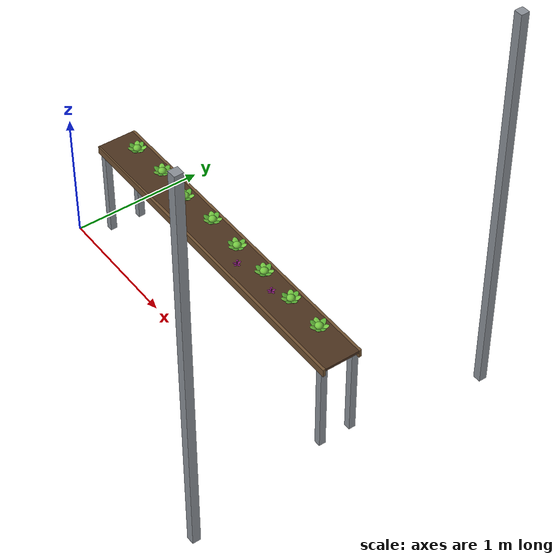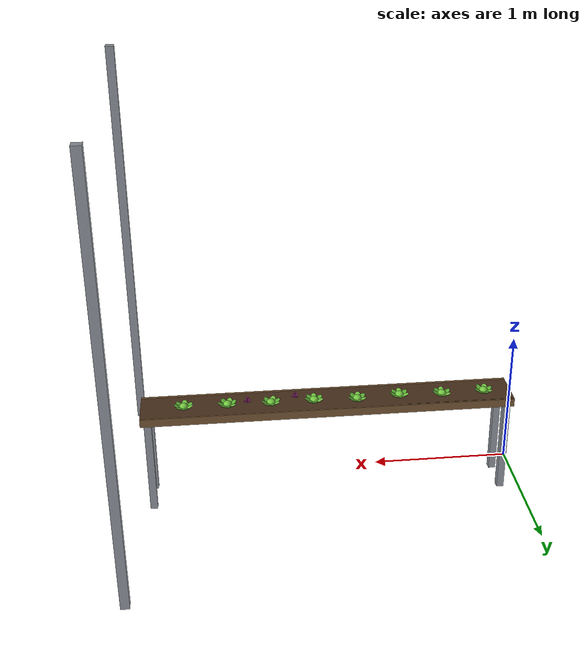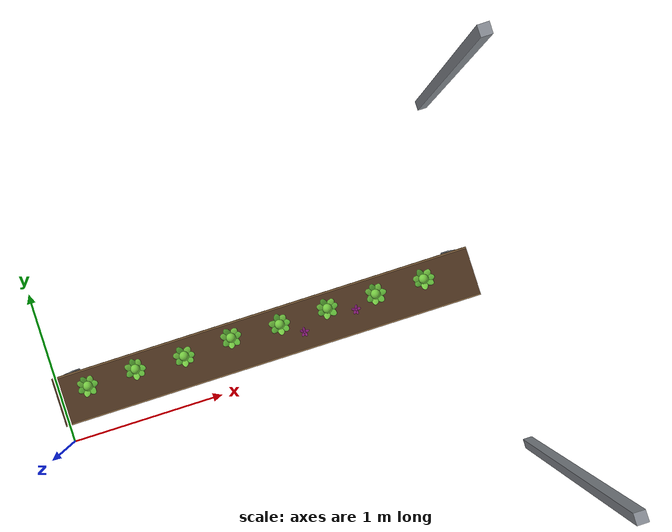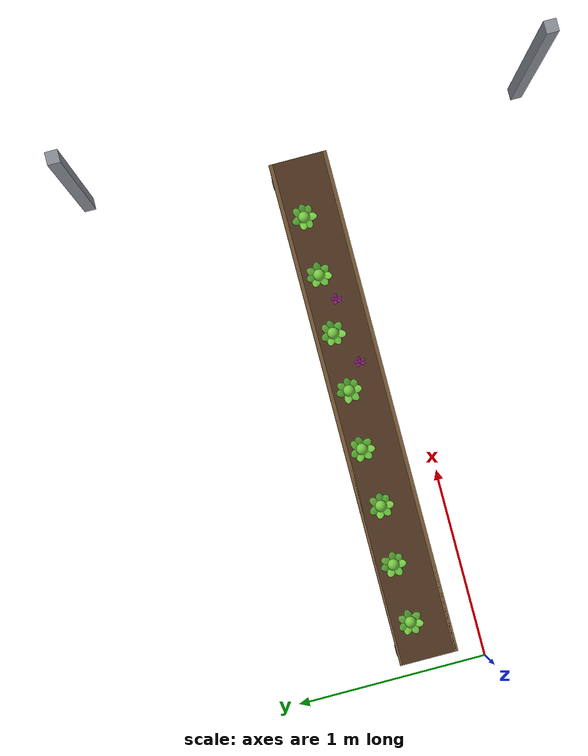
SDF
<sdf version="1.8">
 <world name="weeding_bed">
  <model name="post_2a">
   <static>true</static>
   <pose>2.8000 -0.9000 1.5000 0.0000 0.0000 0.0000</pose>
   <link name="link">
    <visual name="v">
     <geometry><box><size>0.0600 0.0600 3.0000</size></box></geometry>
     <material>
      <ambient>0.550 0.570 0.600 1</ambient>
      <diffuse>0.550 0.570 0.600 1</diffuse>
      <specular>0.1 0.1 0.1 1</specular>
     </material>
    </visual>
   </link>
  </model>
  <model name="post_2b">
   <static>true</static>
   <pose>2.8000 1.4000 1.5000 0.0000 0.0000 0.0000</pose>
   <link name="link">
    <visual name="v">
     <geometry><box><size>0.0600 0.0600 3.0000</size></box></geometry>
     <material>
      <ambient>0.550 0.570 0.600 1</ambient>
      <diffuse>0.550 0.570 0.600 1</diffuse>
      <specular>0.1 0.1 0.1 1</specular>
     </material>
    </visual>
   </link>
  </model>
  <model name="weed_6">
   <pose>1.6281 0.2580 0.7700 0.0000 0.0000 0.0000</pose>
   <link name="link">
    <inertial>
     <mass>0.008</mass>
     <inertia>
      <ixx>1.333e-06</ixx>
      <iyy>1.333e-06</iyy>
      <izz>5.333e-07</izz>
      <ixy>0</ixy>
      <ixz>0</ixz>
      <iyz>0</iyz>
     </inertia>
    </inertial>
    <visual name="stem">
     <pose>0.0000 0.0000 0.0175 0.0000 0.0000 0.0000</pose>
     <geometry><cylinder><radius>0.0030</radius><length>0.0350</length></cylinder></geometry>
     <material>
      <ambient>0.350 0.120 0.250 1</ambient>
      <diffuse>0.350 0.120 0.250 1</diffuse>
      <specular>0.1 0.1 0.1 1</specular>
     </material>
    </visual>
    <collision name="core_collision">
     <pose>0.0000 0.0000 0.0175 0.0000 0.0000 0.0000</pose>
     <geometry><cylinder><radius>0.0030</radius><length>0.0350</length></cylinder></geometry>
     <surface><friction><ode><mu>1.0</mu><mu2>1.0</mu2></ode></friction></surface>
    </collision>
    <visual name="leaf0">
     <pose>0.0139 0.0014 0.0060 0.0000 -0.3000 0.1000</pose>
     <geometry><ellipsoid><radii>0.0160 0.0080 0.0020</radii></ellipsoid></geometry>
     <material>
      <ambient>0.520 0.100 0.460 1</ambient>
      <diffuse>0.520 0.100 0.460 1</diffuse>
      <specular>0.1 0.1 0.1 1</specular>
     </material>
    </visual>
    <visual name="leaf1">
     <pose>0.0007 0.0140 0.0100 0.0000 -0.3000 1.5178</pose>
     <geometry><ellipsoid><radii>0.0160 0.0080 0.0020</radii></ellipsoid></geometry>
     <material>
      <ambient>0.520 0.100 0.460 1</ambient>
      <diffuse>0.520 0.100 0.460 1</diffuse>
      <specular>0.1 0.1 0.1 1</specular>
     </material>
    </visual>
    <visual name="leaf2">
     <pose>-0.0114 0.0081 0.0060 0.0000 -0.3000 2.5252</pose>
     <geometry><ellipsoid><radii>0.0160 0.0080 0.0020</radii></ellipsoid></geometry>
     <material>
      <ambient>0.520 0.100 0.460 1</ambient>
      <diffuse>0.520 0.100 0.460 1</diffuse>
      <specular>0.1 0.1 0.1 1</specular>
     </material>
    </visual>
    <visual name="leaf3">
     <pose>-0.0089 -0.0108 0.0100 0.0000 -0.3000 4.0222</pose>
     <geometry><ellipsoid><radii>0.0160 0.0080 0.0020</radii></ellipsoid></geometry>
     <material>
      <ambient>0.520 0.100 0.460 1</ambient>
      <diffuse>0.520 0.100 0.460 1</diffuse>
      <specular>0.1 0.1 0.1 1</specular>
     </material>
    </visual>
    <visual name="leaf4">
     <pose>0.0038 -0.0135 0.0060 0.0000 -0.3000 4.9909</pose>
     <geometry><ellipsoid><radii>0.0160 0.0080 0.0020</radii></ellipsoid></geometry>
     <material>
      <ambient>0.520 0.100 0.460 1</ambient>
      <diffuse>0.520 0.100 0.460 1</diffuse>
      <specular>0.1 0.1 0.1 1</specular>
     </material>
    </visual>
    <visual name="top">
     <pose>0.0000 0.0000 0.0360 0.0000 0.0000 0.0000</pose>
     <geometry><ellipsoid><radii>0.0080 0.0080 0.0040</radii></ellipsoid></geometry>
     <material>
      <ambient>0.520 0.100 0.460 1</ambient>
      <diffuse>0.520 0.100 0.460 1</diffuse>
      <specular>0.1 0.1 0.1 1</specular>
     </material>
    </visual>
   </link>
   <plugin filename="ignition-gazebo-detachable-joint-system" name="ignition::gazebo::systems::DetachableJoint">
    <parent_link>link</parent_link>
    <child_model>agrobot</child_model>
    <child_link>link_4</child_link>
    <attach_topic>/agrobot/sim/weed_6/attach_gripper</attach_topic>
    <detach_topic>/agrobot/sim/weed_6/detach_gripper</detach_topic>
    <suppress_child_warning>true</suppress_child_warning>
   </plugin>
  </model>
  <model name="weed_7">
   <pose>1.9622 0.2919 0.7700 0.0000 0.0000 0.0000</pose>
   <link name="link">
    <inertial>
     <mass>0.008</mass>
     <inertia>
      <ixx>1.333e-06</ixx>
      <iyy>1.333e-06</iyy>
      <izz>5.333e-07</izz>
      <ixy>0</ixy>
      <ixz>0</ixz>
      <iyz>0</iyz>
     </inertia>
    </inertial>
    <visual name="stem">
     <pose>0.0000 0.0000 0.0175 0.0000 0.0000 0.0000</pose>
     <geometry><cylinder><radius>0.0030</radius><length>0.0350</length></cylinder></geometry>
     <material>
      <ambient>0.350 0.120 0.250 1</ambient>
      <diffuse>0.350 0.120 0.250 1</diffuse>
      <specular>0.1 0.1 0.1 1</specular>
     </material>
    </visual>
    <collision name="core_collision">
     <pose>0.0000 0.0000 0.0175 0.0000 0.0000 0.0000</pose>
     <geometry><cylinder><radius>0.0030</radius><length>0.0350</length></cylinder></geometry>
     <surface><friction><ode><mu>1.0</mu><mu2>1.0</mu2></ode></friction></surface>
    </collision>
    <visual name="leaf0">
     <pose>0.0140 0.0006 0.0060 0.0000 -0.3000 0.0440</pose>
     <geometry><ellipsoid><radii>0.0160 0.0080 0.0020</radii></ellipsoid></geometry>
     <material>
      <ambient>0.520 0.100 0.460 1</ambient>
      <diffuse>0.520 0.100 0.460 1</diffuse>
      <specular>0.1 0.1 0.1 1</specular>
     </material>
    </visual>
    <visual name="leaf1">
     <pose>0.0034 0.0136 0.0100 0.0000 -0.3000 1.3290</pose>
     <geometry><ellipsoid><radii>0.0160 0.0080 0.0020</radii></ellipsoid></geometry>
     <material>
      <ambient>0.520 0.100 0.460 1</ambient>
      <diffuse>0.520 0.100 0.460 1</diffuse>
      <specular>0.1 0.1 0.1 1</specular>
     </material>
    </visual>
    <visual name="leaf2">
     <pose>-0.0128 0.0058 0.0060 0.0000 -0.3000 2.7171</pose>
     <geometry><ellipsoid><radii>0.0160 0.0080 0.0020</radii></ellipsoid></geometry>
     <material>
      <ambient>0.520 0.100 0.460 1</ambient>
      <diffuse>0.520 0.100 0.460 1</diffuse>
      <specular>0.1 0.1 0.1 1</specular>
     </material>
    </visual>
    <visual name="leaf3">
     <pose>-0.0091 -0.0107 0.0100 0.0000 -0.3000 4.0085</pose>
     <geometry><ellipsoid><radii>0.0160 0.0080 0.0020</radii></ellipsoid></geometry>
     <material>
      <ambient>0.520 0.100 0.460 1</ambient>
      <diffuse>0.520 0.100 0.460 1</diffuse>
      <specular>0.1 0.1 0.1 1</specular>
     </material>
    </visual>
    <visual name="leaf4">
     <pose>0.0012 -0.0140 0.0060 0.0000 -0.3000 4.7958</pose>
     <geometry><ellipsoid><radii>0.0160 0.0080 0.0020</radii></ellipsoid></geometry>
     <material>
      <ambient>0.520 0.100 0.460 1</ambient>
      <diffuse>0.520 0.100 0.460 1</diffuse>
      <specular>0.1 0.1 0.1 1</specular>
     </material>
    </visual>
    <visual name="top">
     <pose>0.0000 0.0000 0.0360 0.0000 0.0000 0.0000</pose>
     <geometry><ellipsoid><radii>0.0080 0.0080 0.0040</radii></ellipsoid></geometry>
     <material>
      <ambient>0.520 0.100 0.460 1</ambient>
      <diffuse>0.520 0.100 0.460 1</diffuse>
      <specular>0.1 0.1 0.1 1</specular>
     </material>
    </visual>
   </link>
   <plugin filename="ignition-gazebo-detachable-joint-system" name="ignition::gazebo::systems::DetachableJoint">
    <parent_link>link</parent_link>
    <child_model>agrobot</child_model>
    <child_link>link_4</child_link>
    <attach_topic>/agrobot/sim/weed_7/attach_gripper</attach_topic>
    <detach_topic>/agrobot/sim/weed_7/detach_gripper</detach_topic>
    <suppress_child_warning>true</suppress_child_warning>
   </plugin>
  </model>
  <model name="raised_bed">
   <static>true</static>
   <pose>1.4000 0.3000 0.7600 0.0000 0.0000 0.0000</pose>
   <link name="bed">
    <inertial>
     <mass>80.0</mass>
     <inertia>
      <ixx>1.123e+00</ixx>
      <iyy>4.567e+01</iyy>
      <izz>4.559e+01</izz>
      <ixy>0</ixy>
      <ixz>0</ixz>
      <iyz>0</iyz>
     </inertia>
    </inertial>
    <visual name="soil">
     <geometry><box><size>2.6000 0.2800 0.0200</size></box></geometry>
     <material>
      <ambient>0.300 0.200 0.120 1</ambient>
      <diffuse>0.300 0.200 0.120 1</diffuse>
      <specular>0.1 0.1 0.1 1</specular>
     </material>
    </visual>
    <collision name="soil_collision">
     <geometry><box><size>2.6000 0.2800 0.0200</size></box></geometry>
     <surface><friction><ode><mu>1.0</mu><mu2>1.0</mu2></ode></friction></surface>
    </collision>
    <visual name="frame_front">
     <pose>0.0000 -0.1400 -0.0200 0.0000 0.0000 0.0000</pose>
     <geometry><box><size>2.6000 0.0200 0.0600</size></box></geometry>
     <material>
      <ambient>0.450 0.330 0.200 1</ambient>
      <diffuse>0.450 0.330 0.200 1</diffuse>
      <specular>0.1 0.1 0.1 1</specular>
     </material>
    </visual>
    <visual name="frame_back">
     <pose>0.0000 0.1400 -0.0200 0.0000 0.0000 0.0000</pose>
     <geometry><box><size>2.6000 0.0200 0.0600</size></box></geometry>
     <material>
      <ambient>0.450 0.330 0.200 1</ambient>
      <diffuse>0.450 0.330 0.200 1</diffuse>
      <specular>0.1 0.1 0.1 1</specular>
     </material>
    </visual>
    <visual name="leg_0">
     <pose>-1.2500 -0.1200 -0.3700 0.0000 0.0000 0.0000</pose>
     <geometry><box><size>0.0500 0.0500 0.7200</size></box></geometry>
     <material>
      <ambient>0.550 0.570 0.600 1</ambient>
      <diffuse>0.550 0.570 0.600 1</diffuse>
      <specular>0.1 0.1 0.1 1</specular>
     </material>
    </visual>
    <visual name="leg_1">
     <pose>1.2500 -0.1200 -0.3700 0.0000 0.0000 0.0000</pose>
     <geometry><box><size>0.0500 0.0500 0.7200</size></box></geometry>
     <material>
      <ambient>0.550 0.570 0.600 1</ambient>
      <diffuse>0.550 0.570 0.600 1</diffuse>
      <specular>0.1 0.1 0.1 1</specular>
     </material>
    </visual>
    <visual name="leg_2">
     <pose>-1.2500 0.1200 -0.3700 0.0000 0.0000 0.0000</pose>
     <geometry><box><size>0.0500 0.0500 0.7200</size></box></geometry>
     <material>
      <ambient>0.550 0.570 0.600 1</ambient>
      <diffuse>0.550 0.570 0.600 1</diffuse>
      <specular>0.1 0.1 0.1 1</specular>
     </material>
    </visual>
    <visual name="leg_3">
     <pose>1.2500 0.1200 -0.3700 0.0000 0.0000 0.0000</pose>
     <geometry><box><size>0.0500 0.0500 0.7200</size></box></geometry>
     <material>
      <ambient>0.550 0.570 0.600 1</ambient>
      <diffuse>0.550 0.570 0.600 1</diffuse>
      <specular>0.1 0.1 0.1 1</specular>
     </material>
    </visual>
    <visual name="lettuce_0_heart">
     <pose>-1.1000 0.0452 0.0350 0.0000 0.0000 0.0000</pose>
     <geometry><ellipsoid><radii>0.0300 0.0300 0.0250</radii></ellipsoid></geometry>
     <material>
      <ambient>0.450 0.780 0.250 1</ambient>
      <diffuse>0.450 0.780 0.250 1</diffuse>
      <specular>0.1 0.1 0.1 1</specular>
     </material>
    </visual>
    <visual name="lettuce_0_leaf0">
     <pose>-1.0701 0.0474 0.0300 0.0000 -0.5000 0.0741</pose>
     <geometry><ellipsoid><radii>0.0400 0.0220 0.0060</radii></ellipsoid></geometry>
     <material>
      <ambient>0.350 0.680 0.200 1</ambient>
      <diffuse>0.350 0.680 0.200 1</diffuse>
      <specular>0.1 0.1 0.1 1</specular>
     </material>
    </visual>
    <visual name="lettuce_0_leaf1">
     <pose>-1.0831 0.0699 0.0300 0.0000 -0.5000 0.9712</pose>
     <geometry><ellipsoid><radii>0.0400 0.0220 0.0060</radii></ellipsoid></geometry>
     <material>
      <ambient>0.450 0.780 0.250 1</ambient>
      <diffuse>0.450 0.780 0.250 1</diffuse>
      <specular>0.1 0.1 0.1 1</specular>
     </material>
    </visual>
    <visual name="lettuce_0_leaf2">
     <pose>-1.1107 0.0732 0.0300 0.0000 -0.5000 1.9349</pose>
     <geometry><ellipsoid><radii>0.0400 0.0220 0.0060</radii></ellipsoid></geometry>
     <material>
      <ambient>0.350 0.680 0.200 1</ambient>
      <diffuse>0.350 0.680 0.200 1</diffuse>
      <specular>0.1 0.1 0.1 1</specular>
     </material>
    </visual>
    <visual name="lettuce_0_leaf3">
     <pose>-1.1252 0.0615 0.0300 0.0000 -0.5000 2.5671</pose>
     <geometry><ellipsoid><radii>0.0400 0.0220 0.0060</radii></ellipsoid></geometry>
     <material>
      <ambient>0.450 0.780 0.250 1</ambient>
      <diffuse>0.450 0.780 0.250 1</diffuse>
      <specular>0.1 0.1 0.1 1</specular>
     </material>
    </visual>
    <visual name="lettuce_0_leaf4">
     <pose>-1.1283 0.0351 0.0300 0.0000 -0.5000 3.4826</pose>
     <geometry><ellipsoid><radii>0.0400 0.0220 0.0060</radii></ellipsoid></geometry>
     <material>
      <ambient>0.350 0.680 0.200 1</ambient>
      <diffuse>0.350 0.680 0.200 1</diffuse>
      <specular>0.1 0.1 0.1 1</specular>
     </material>
    </visual>
    <visual name="lettuce_0_leaf5">
     <pose>-1.1107 0.0172 0.0300 0.0000 -0.5000 4.3469</pose>
     <geometry><ellipsoid><radii>0.0400 0.0220 0.0060</radii></ellipsoid></geometry>
     <material>
      <ambient>0.450 0.780 0.250 1</ambient>
      <diffuse>0.450 0.780 0.250 1</diffuse>
      <specular>0.1 0.1 0.1 1</specular>
     </material>
    </visual>
    <visual name="lettuce_0_leaf6">
     <pose>-1.0840 0.0198 0.0300 0.0000 -0.5000 5.2757</pose>
     <geometry><ellipsoid><radii>0.0400 0.0220 0.0060</radii></ellipsoid></geometry>
     <material>
      <ambient>0.350 0.680 0.200 1</ambient>
      <diffuse>0.350 0.680 0.200 1</diffuse>
      <specular>0.1 0.1 0.1 1</specular>
     </material>
    </visual>
    <visual name="lettuce_1_heart">
     <pose>-0.8000 0.0547 0.0350 0.0000 0.0000 0.0000</pose>
     <geometry><ellipsoid><radii>0.0300 0.0300 0.0250</radii></ellipsoid></geometry>
     <material>
      <ambient>0.450 0.780 0.250 1</ambient>
      <diffuse>0.450 0.780 0.250 1</diffuse>
      <specular>0.1 0.1 0.1 1</specular>
     </material>
    </visual>
    <visual name="lettuce_1_leaf0">
     <pose>-0.7703 0.0503 0.0300 0.0000 -0.5000 -0.1479</pose>
     <geometry><ellipsoid><radii>0.0400 0.0220 0.0060</radii></ellipsoid></geometry>
     <material>
      <ambient>0.350 0.680 0.200 1</ambient>
      <diffuse>0.350 0.680 0.200 1</diffuse>
      <specular>0.1 0.1 0.1 1</specular>
     </material>
    </visual>
    <visual name="lettuce_1_leaf1">
     <pose>-0.7816 0.0784 0.0300 0.0000 -0.5000 0.9101</pose>
     <geometry><ellipsoid><radii>0.0400 0.0220 0.0060</radii></ellipsoid></geometry>
     <material>
      <ambient>0.450 0.780 0.250 1</ambient>
      <diffuse>0.450 0.780 0.250 1</diffuse>
      <specular>0.1 0.1 0.1 1</specular>
     </material>
    </visual>
    <visual name="lettuce_1_leaf2">
     <pose>-0.8033 0.0845 0.0300 0.0000 -0.5000 1.6808</pose>
     <geometry><ellipsoid><radii>0.0400 0.0220 0.0060</radii></ellipsoid></geometry>
     <material>
      <ambient>0.350 0.680 0.200 1</ambient>
      <diffuse>0.350 0.680 0.200 1</diffuse>
      <specular>0.1 0.1 0.1 1</specular>
     </material>
    </visual>
    <visual name="lettuce_1_leaf3">
     <pose>-0.8259 0.0699 0.0300 0.0000 -0.5000 2.6107</pose>
     <geometry><ellipsoid><radii>0.0400 0.0220 0.0060</radii></ellipsoid></geometry>
     <material>
      <ambient>0.450 0.780 0.250 1</ambient>
      <diffuse>0.450 0.780 0.250 1</diffuse>
      <specular>0.1 0.1 0.1 1</specular>
     </material>
    </visual>
    <visual name="lettuce_1_leaf4">
     <pose>-0.8274 0.0424 0.0300 0.0000 -0.5000 3.5630</pose>
     <geometry><ellipsoid><radii>0.0400 0.0220 0.0060</radii></ellipsoid></geometry>
     <material>
      <ambient>0.350 0.680 0.200 1</ambient>
      <diffuse>0.350 0.680 0.200 1</diffuse>
      <specular>0.1 0.1 0.1 1</specular>
     </material>
    </visual>
    <visual name="lettuce_1_leaf5">
     <pose>-0.8027 0.0248 0.0300 0.0000 -0.5000 4.6231</pose>
     <geometry><ellipsoid><radii>0.0400 0.0220 0.0060</radii></ellipsoid></geometry>
     <material>
      <ambient>0.450 0.780 0.250 1</ambient>
      <diffuse>0.450 0.780 0.250 1</diffuse>
      <specular>0.1 0.1 0.1 1</specular>
     </material>
    </visual>
    <visual name="lettuce_1_leaf6">
     <pose>-0.7803 0.0321 0.0300 0.0000 -0.5000 5.4289</pose>
     <geometry><ellipsoid><radii>0.0400 0.0220 0.0060</radii></ellipsoid></geometry>
     <material>
      <ambient>0.350 0.680 0.200 1</ambient>
      <diffuse>0.350 0.680 0.200 1</diffuse>
      <specular>0.1 0.1 0.1 1</specular>
     </material>
    </visual>
    <visual name="lettuce_2_heart">
     <pose>-0.5000 0.0403 0.0350 0.0000 0.0000 0.0000</pose>
     <geometry><ellipsoid><radii>0.0300 0.0300 0.0250</radii></ellipsoid></geometry>
     <material>
      <ambient>0.450 0.780 0.250 1</ambient>
      <diffuse>0.450 0.780 0.250 1</diffuse>
      <specular>0.1 0.1 0.1 1</specular>
     </material>
    </visual>
    <visual name="lettuce_2_leaf0">
     <pose>-0.4701 0.0376 0.0300 0.0000 -0.5000 -0.0897</pose>
     <geometry><ellipsoid><radii>0.0400 0.0220 0.0060</radii></ellipsoid></geometry>
     <material>
      <ambient>0.350 0.680 0.200 1</ambient>
      <diffuse>0.350 0.680 0.200 1</diffuse>
      <specular>0.1 0.1 0.1 1</specular>
     </material>
    </visual>
    <visual name="lettuce_2_leaf1">
     <pose>-0.4782 0.0609 0.0300 0.0000 -0.5000 0.7563</pose>
     <geometry><ellipsoid><radii>0.0400 0.0220 0.0060</radii></ellipsoid></geometry>
     <material>
      <ambient>0.450 0.780 0.250 1</ambient>
      <diffuse>0.450 0.780 0.250 1</diffuse>
      <specular>0.1 0.1 0.1 1</specular>
     </material>
    </visual>
    <visual name="lettuce_2_leaf2">
     <pose>-0.5109 0.0682 0.0300 0.0000 -0.5000 1.9437</pose>
     <geometry><ellipsoid><radii>0.0400 0.0220 0.0060</radii></ellipsoid></geometry>
     <material>
      <ambient>0.350 0.680 0.200 1</ambient>
      <diffuse>0.350 0.680 0.200 1</diffuse>
      <specular>0.1 0.1 0.1 1</specular>
     </material>
    </visual>
    <visual name="lettuce_2_leaf3">
     <pose>-0.5284 0.0499 0.0300 0.0000 -0.5000 2.8167</pose>
     <geometry><ellipsoid><radii>0.0400 0.0220 0.0060</radii></ellipsoid></geometry>
     <material>
      <ambient>0.450 0.780 0.250 1</ambient>
      <diffuse>0.450 0.780 0.250 1</diffuse>
      <specular>0.1 0.1 0.1 1</specular>
     </material>
    </visual>
    <visual name="lettuce_2_leaf4">
     <pose>-0.5252 0.0241 0.0300 0.0000 -0.5000 3.7128</pose>
     <geometry><ellipsoid><radii>0.0400 0.0220 0.0060</radii></ellipsoid></geometry>
     <material>
      <ambient>0.350 0.680 0.200 1</ambient>
      <diffuse>0.350 0.680 0.200 1</diffuse>
      <specular>0.1 0.1 0.1 1</specular>
     </material>
    </visual>
    <visual name="lettuce_2_leaf5">
     <pose>-0.5028 0.0104 0.0300 0.0000 -0.5000 4.6185</pose>
     <geometry><ellipsoid><radii>0.0400 0.0220 0.0060</radii></ellipsoid></geometry>
     <material>
      <ambient>0.450 0.780 0.250 1</ambient>
      <diffuse>0.450 0.780 0.250 1</diffuse>
      <specular>0.1 0.1 0.1 1</specular>
     </material>
    </visual>
    <visual name="lettuce_2_leaf6">
     <pose>-0.4791 0.0188 0.0300 0.0000 -0.5000 5.4835</pose>
     <geometry><ellipsoid><radii>0.0400 0.0220 0.0060</radii></ellipsoid></geometry>
     <material>
      <ambient>0.350 0.680 0.200 1</ambient>
      <diffuse>0.350 0.680 0.200 1</diffuse>
      <specular>0.1 0.1 0.1 1</specular>
     </material>
    </visual>
    <visual name="lettuce_3_heart">
     <pose>-0.2000 0.0590 0.0350 0.0000 0.0000 0.0000</pose>
     <geometry><ellipsoid><radii>0.0300 0.0300 0.0250</radii></ellipsoid></geometry>
     <material>
      <ambient>0.450 0.780 0.250 1</ambient>
      <diffuse>0.450 0.780 0.250 1</diffuse>
      <specular>0.1 0.1 0.1 1</specular>
     </material>
    </visual>
    <visual name="lettuce_3_leaf0">
     <pose>-0.1702 0.0625 0.0300 0.0000 -0.5000 0.1175</pose>
     <geometry><ellipsoid><radii>0.0400 0.0220 0.0060</radii></ellipsoid></geometry>
     <material>
      <ambient>0.350 0.680 0.200 1</ambient>
      <diffuse>0.350 0.680 0.200 1</diffuse>
      <specular>0.1 0.1 0.1 1</specular>
     </material>
    </visual>
    <visual name="lettuce_3_leaf1">
     <pose>-0.1791 0.0805 0.0300 0.0000 -0.5000 0.8003</pose>
     <geometry><ellipsoid><radii>0.0400 0.0220 0.0060</radii></ellipsoid></geometry>
     <material>
      <ambient>0.450 0.780 0.250 1</ambient>
      <diffuse>0.450 0.780 0.250 1</diffuse>
      <specular>0.1 0.1 0.1 1</specular>
     </material>
    </visual>
    <visual name="lettuce_3_leaf2">
     <pose>-0.2107 0.0870 0.0300 0.0000 -0.5000 1.9352</pose>
     <geometry><ellipsoid><radii>0.0400 0.0220 0.0060</radii></ellipsoid></geometry>
     <material>
      <ambient>0.350 0.680 0.200 1</ambient>
      <diffuse>0.350 0.680 0.200 1</diffuse>
      <specular>0.1 0.1 0.1 1</specular>
     </material>
    </visual>
    <visual name="lettuce_3_leaf3">
     <pose>-0.2270 0.0721 0.0300 0.0000 -0.5000 2.6875</pose>
     <geometry><ellipsoid><radii>0.0400 0.0220 0.0060</radii></ellipsoid></geometry>
     <material>
      <ambient>0.450 0.780 0.250 1</ambient>
      <diffuse>0.450 0.780 0.250 1</diffuse>
      <specular>0.1 0.1 0.1 1</specular>
     </material>
    </visual>
    <visual name="lettuce_3_leaf4">
     <pose>-0.2256 0.0433 0.0300 0.0000 -0.5000 3.6924</pose>
     <geometry><ellipsoid><radii>0.0400 0.0220 0.0060</radii></ellipsoid></geometry>
     <material>
      <ambient>0.350 0.680 0.200 1</ambient>
      <diffuse>0.350 0.680 0.200 1</diffuse>
      <specular>0.1 0.1 0.1 1</specular>
     </material>
    </visual>
    <visual name="lettuce_3_leaf5">
     <pose>-0.2059 0.0296 0.0300 0.0000 -0.5000 4.5136</pose>
     <geometry><ellipsoid><radii>0.0400 0.0220 0.0060</radii></ellipsoid></geometry>
     <material>
      <ambient>0.450 0.780 0.250 1</ambient>
      <diffuse>0.450 0.780 0.250 1</diffuse>
      <specular>0.1 0.1 0.1 1</specular>
     </material>
    </visual>
    <visual name="lettuce_3_leaf6">
     <pose>-0.1820 0.0350 0.0300 0.0000 -0.5000 5.3574</pose>
     <geometry><ellipsoid><radii>0.0400 0.0220 0.0060</radii></ellipsoid></geometry>
     <material>
      <ambient>0.350 0.680 0.200 1</ambient>
      <diffuse>0.350 0.680 0.200 1</diffuse>
      <specular>0.1 0.1 0.1 1</specular>
     </material>
    </visual>
    <visual name="lettuce_4_heart">
     <pose>0.1000 0.0473 0.0350 0.0000 0.0000 0.0000</pose>
     <geometry><ellipsoid><radii>0.0300 0.0300 0.0250</radii></ellipsoid></geometry>
     <material>
      <ambient>0.450 0.780 0.250 1</ambient>
      <diffuse>0.450 0.780 0.250 1</diffuse>
      <specular>0.1 0.1 0.1 1</specular>
     </material>
    </visual>
    <visual name="lettuce_4_leaf0">
     <pose>0.1300 0.0464 0.0300 0.0000 -0.5000 -0.0281</pose>
     <geometry><ellipsoid><radii>0.0400 0.0220 0.0060</radii></ellipsoid></geometry>
     <material>
      <ambient>0.350 0.680 0.200 1</ambient>
      <diffuse>0.350 0.680 0.200 1</diffuse>
      <specular>0.1 0.1 0.1 1</specular>
     </material>
    </visual>
    <visual name="lettuce_4_leaf1">
     <pose>0.1204 0.0693 0.0300 0.0000 -0.5000 0.8231</pose>
     <geometry><ellipsoid><radii>0.0400 0.0220 0.0060</radii></ellipsoid></geometry>
     <material>
      <ambient>0.450 0.780 0.250 1</ambient>
      <diffuse>0.450 0.780 0.250 1</diffuse>
      <specular>0.1 0.1 0.1 1</specular>
     </material>
    </visual>
    <visual name="lettuce_4_leaf2">
     <pose>0.0979 0.0772 0.0300 0.0000 -0.5000 1.6421</pose>
     <geometry><ellipsoid><radii>0.0400 0.0220 0.0060</radii></ellipsoid></geometry>
     <material>
      <ambient>0.350 0.680 0.200 1</ambient>
      <diffuse>0.350 0.680 0.200 1</diffuse>
      <specular>0.1 0.1 0.1 1</specular>
     </material>
    </visual>
    <visual name="lettuce_4_leaf3">
     <pose>0.0715 0.0567 0.0300 0.0000 -0.5000 2.8207</pose>
     <geometry><ellipsoid><radii>0.0400 0.0220 0.0060</radii></ellipsoid></geometry>
     <material>
      <ambient>0.450 0.780 0.250 1</ambient>
      <diffuse>0.450 0.780 0.250 1</diffuse>
      <specular>0.1 0.1 0.1 1</specular>
     </material>
    </visual>
    <visual name="lettuce_4_leaf4">
     <pose>0.0747 0.0311 0.0300 0.0000 -0.5000 3.7097</pose>
     <geometry><ellipsoid><radii>0.0400 0.0220 0.0060</radii></ellipsoid></geometry>
     <material>
      <ambient>0.350 0.680 0.200 1</ambient>
      <diffuse>0.350 0.680 0.200 1</diffuse>
      <specular>0.1 0.1 0.1 1</specular>
     </material>
    </visual>
    <visual name="lettuce_4_leaf5">
     <pose>0.0991 0.0173 0.0300 0.0000 -0.5000 4.6823</pose>
     <geometry><ellipsoid><radii>0.0400 0.0220 0.0060</radii></ellipsoid></geometry>
     <material>
      <ambient>0.450 0.780 0.250 1</ambient>
      <diffuse>0.450 0.780 0.250 1</diffuse>
      <specular>0.1 0.1 0.1 1</specular>
     </material>
    </visual>
    <visual name="lettuce_4_leaf6">
     <pose>0.1204 0.0253 0.0300 0.0000 -0.5000 5.4620</pose>
     <geometry><ellipsoid><radii>0.0400 0.0220 0.0060</radii></ellipsoid></geometry>
     <material>
      <ambient>0.350 0.680 0.200 1</ambient>
      <diffuse>0.350 0.680 0.200 1</diffuse>
      <specular>0.1 0.1 0.1 1</specular>
     </material>
    </visual>
    <visual name="lettuce_5_heart">
     <pose>0.4000 0.0511 0.0350 0.0000 0.0000 0.0000</pose>
     <geometry><ellipsoid><radii>0.0300 0.0300 0.0250</radii></ellipsoid></geometry>
     <material>
      <ambient>0.450 0.780 0.250 1</ambient>
      <diffuse>0.450 0.780 0.250 1</diffuse>
      <specular>0.1 0.1 0.1 1</specular>
     </material>
    </visual>
    <visual name="lettuce_5_leaf0">
     <pose>0.4299 0.0541 0.0300 0.0000 -0.5000 0.0994</pose>
     <geometry><ellipsoid><radii>0.0400 0.0220 0.0060</radii></ellipsoid></geometry>
     <material>
      <ambient>0.350 0.680 0.200 1</ambient>
      <diffuse>0.350 0.680 0.200 1</diffuse>
      <specular>0.1 0.1 0.1 1</specular>
     </material>
    </visual>
    <visual name="lettuce_5_leaf1">
     <pose>0.4219 0.0716 0.0300 0.0000 -0.5000 0.7515</pose>
     <geometry><ellipsoid><radii>0.0400 0.0220 0.0060</radii></ellipsoid></geometry>
     <material>
      <ambient>0.450 0.780 0.250 1</ambient>
      <diffuse>0.450 0.780 0.250 1</diffuse>
      <specular>0.1 0.1 0.1 1</specular>
     </material>
    </visual>
    <visual name="lettuce_5_leaf2">
     <pose>0.3913 0.0798 0.0300 0.0000 -0.5000 1.8659</pose>
     <geometry><ellipsoid><radii>0.0400 0.0220 0.0060</radii></ellipsoid></geometry>
     <material>
      <ambient>0.350 0.680 0.200 1</ambient>
      <diffuse>0.350 0.680 0.200 1</diffuse>
      <specular>0.1 0.1 0.1 1</specular>
     </material>
    </visual>
    <visual name="lettuce_5_leaf3">
     <pose>0.3733 0.0647 0.0300 0.0000 -0.5000 2.6702</pose>
     <geometry><ellipsoid><radii>0.0400 0.0220 0.0060</radii></ellipsoid></geometry>
     <material>
      <ambient>0.450 0.780 0.250 1</ambient>
      <diffuse>0.450 0.780 0.250 1</diffuse>
      <specular>0.1 0.1 0.1 1</specular>
     </material>
    </visual>
    <visual name="lettuce_5_leaf4">
     <pose>0.3715 0.0417 0.0300 0.0000 -0.5000 3.4610</pose>
     <geometry><ellipsoid><radii>0.0400 0.0220 0.0060</radii></ellipsoid></geometry>
     <material>
      <ambient>0.350 0.680 0.200 1</ambient>
      <diffuse>0.350 0.680 0.200 1</diffuse>
      <specular>0.1 0.1 0.1 1</specular>
     </material>
    </visual>
    <visual name="lettuce_5_leaf5">
     <pose>0.3899 0.0228 0.0300 0.0000 -0.5000 4.3690</pose>
     <geometry><ellipsoid><radii>0.0400 0.0220 0.0060</radii></ellipsoid></geometry>
     <material>
      <ambient>0.450 0.780 0.250 1</ambient>
      <diffuse>0.450 0.780 0.250 1</diffuse>
      <specular>0.1 0.1 0.1 1</specular>
     </material>
    </visual>
    <visual name="lettuce_5_leaf6">
     <pose>0.4189 0.0278 0.0300 0.0000 -0.5000 5.3947</pose>
     <geometry><ellipsoid><radii>0.0400 0.0220 0.0060</radii></ellipsoid></geometry>
     <material>
      <ambient>0.350 0.680 0.200 1</ambient>
      <diffuse>0.350 0.680 0.200 1</diffuse>
      <specular>0.1 0.1 0.1 1</specular>
     </material>
    </visual>
    <visual name="lettuce_6_heart">
     <pose>0.7000 0.0451 0.0350 0.0000 0.0000 0.0000</pose>
     <geometry><ellipsoid><radii>0.0300 0.0300 0.0250</radii></ellipsoid></geometry>
     <material>
      <ambient>0.450 0.780 0.250 1</ambient>
      <diffuse>0.450 0.780 0.250 1</diffuse>
      <specular>0.1 0.1 0.1 1</specular>
     </material>
    </visual>
    <visual name="lettuce_6_leaf0">
     <pose>0.7300 0.0446 0.0300 0.0000 -0.5000 -0.0162</pose>
     <geometry><ellipsoid><radii>0.0400 0.0220 0.0060</radii></ellipsoid></geometry>
     <material>
      <ambient>0.350 0.680 0.200 1</ambient>
      <diffuse>0.350 0.680 0.200 1</diffuse>
      <specular>0.1 0.1 0.1 1</specular>
     </material>
    </visual>
    <visual name="lettuce_6_leaf1">
     <pose>0.7177 0.0693 0.0300 0.0000 -0.5000 0.9398</pose>
     <geometry><ellipsoid><radii>0.0400 0.0220 0.0060</radii></ellipsoid></geometry>
     <material>
      <ambient>0.450 0.780 0.250 1</ambient>
      <diffuse>0.450 0.780 0.250 1</diffuse>
      <specular>0.1 0.1 0.1 1</specular>
     </material>
    </visual>
    <visual name="lettuce_6_leaf2">
     <pose>0.6945 0.0746 0.0300 0.0000 -0.5000 1.7535</pose>
     <geometry><ellipsoid><radii>0.0400 0.0220 0.0060</radii></ellipsoid></geometry>
     <material>
      <ambient>0.350 0.680 0.200 1</ambient>
      <diffuse>0.350 0.680 0.200 1</diffuse>
      <specular>0.1 0.1 0.1 1</specular>
     </material>
    </visual>
    <visual name="lettuce_6_leaf3">
     <pose>0.6752 0.0619 0.0300 0.0000 -0.5000 2.5451</pose>
     <geometry><ellipsoid><radii>0.0400 0.0220 0.0060</radii></ellipsoid></geometry>
     <material>
      <ambient>0.450 0.780 0.250 1</ambient>
      <diffuse>0.450 0.780 0.250 1</diffuse>
      <specular>0.1 0.1 0.1 1</specular>
     </material>
    </visual>
    <visual name="lettuce_6_leaf4">
     <pose>0.6729 0.0321 0.0300 0.0000 -0.5000 3.5867</pose>
     <geometry><ellipsoid><radii>0.0400 0.0220 0.0060</radii></ellipsoid></geometry>
     <material>
      <ambient>0.350 0.680 0.200 1</ambient>
      <diffuse>0.350 0.680 0.200 1</diffuse>
      <specular>0.1 0.1 0.1 1</specular>
     </material>
    </visual>
    <visual name="lettuce_6_leaf5">
     <pose>0.6903 0.0167 0.0300 0.0000 -0.5000 4.3822</pose>
     <geometry><ellipsoid><radii>0.0400 0.0220 0.0060</radii></ellipsoid></geometry>
     <material>
      <ambient>0.450 0.780 0.250 1</ambient>
      <diffuse>0.450 0.780 0.250 1</diffuse>
      <specular>0.1 0.1 0.1 1</specular>
     </material>
    </visual>
    <visual name="lettuce_6_leaf6">
     <pose>0.7161 0.0198 0.0300 0.0000 -0.5000 5.2799</pose>
     <geometry><ellipsoid><radii>0.0400 0.0220 0.0060</radii></ellipsoid></geometry>
     <material>
      <ambient>0.350 0.680 0.200 1</ambient>
      <diffuse>0.350 0.680 0.200 1</diffuse>
      <specular>0.1 0.1 0.1 1</specular>
     </material>
    </visual>
    <visual name="lettuce_7_heart">
     <pose>1.0000 0.0439 0.0350 0.0000 0.0000 0.0000</pose>
     <geometry><ellipsoid><radii>0.0300 0.0300 0.0250</radii></ellipsoid></geometry>
     <material>
      <ambient>0.450 0.780 0.250 1</ambient>
      <diffuse>0.450 0.780 0.250 1</diffuse>
      <specular>0.1 0.1 0.1 1</specular>
     </material>
    </visual>
    <visual name="lettuce_7_leaf0">
     <pose>1.0300 0.0423 0.0300 0.0000 -0.5000 -0.0534</pose>
     <geometry><ellipsoid><radii>0.0400 0.0220 0.0060</radii></ellipsoid></geometry>
     <material>
      <ambient>0.350 0.680 0.200 1</ambient>
      <diffuse>0.350 0.680 0.200 1</diffuse>
      <specular>0.1 0.1 0.1 1</specular>
     </material>
    </visual>
    <visual name="lettuce_7_leaf1">
     <pose>1.0224 0.0638 0.0300 0.0000 -0.5000 0.7269</pose>
     <geometry><ellipsoid><radii>0.0400 0.0220 0.0060</radii></ellipsoid></geometry>
     <material>
      <ambient>0.450 0.780 0.250 1</ambient>
      <diffuse>0.450 0.780 0.250 1</diffuse>
      <specular>0.1 0.1 0.1 1</specular>
     </material>
    </visual>
    <visual name="lettuce_7_leaf2">
     <pose>0.9916 0.0727 0.0300 0.0000 -0.5000 1.8557</pose>
     <geometry><ellipsoid><radii>0.0400 0.0220 0.0060</radii></ellipsoid></geometry>
     <material>
      <ambient>0.350 0.680 0.200 1</ambient>
      <diffuse>0.350 0.680 0.200 1</diffuse>
      <specular>0.1 0.1 0.1 1</specular>
     </material>
    </visual>
    <visual name="lettuce_7_leaf3">
     <pose>0.9711 0.0518 0.0300 0.0000 -0.5000 2.8743</pose>
     <geometry><ellipsoid><radii>0.0400 0.0220 0.0060</radii></ellipsoid></geometry>
     <material>
      <ambient>0.450 0.780 0.250 1</ambient>
      <diffuse>0.450 0.780 0.250 1</diffuse>
      <specular>0.1 0.1 0.1 1</specular>
     </material>
    </visual>
    <visual name="lettuce_7_leaf4">
     <pose>0.9724 0.0321 0.0300 0.0000 -0.5000 3.5463</pose>
     <geometry><ellipsoid><radii>0.0400 0.0220 0.0060</radii></ellipsoid></geometry>
     <material>
      <ambient>0.350 0.680 0.200 1</ambient>
      <diffuse>0.350 0.680 0.200 1</diffuse>
      <specular>0.1 0.1 0.1 1</specular>
     </material>
    </visual>
    <visual name="lettuce_7_leaf5">
     <pose>0.9959 0.0142 0.0300 0.0000 -0.5000 4.5755</pose>
     <geometry><ellipsoid><radii>0.0400 0.0220 0.0060</radii></ellipsoid></geometry>
     <material>
      <ambient>0.450 0.780 0.250 1</ambient>
      <diffuse>0.450 0.780 0.250 1</diffuse>
      <specular>0.1 0.1 0.1 1</specular>
     </material>
    </visual>
    <visual name="lettuce_7_leaf6">
     <pose>1.0225 0.0240 0.0300 0.0000 -0.5000 5.5588</pose>
     <geometry><ellipsoid><radii>0.0400 0.0220 0.0060</radii></ellipsoid></geometry>
     <material>
      <ambient>0.350 0.680 0.200 1</ambient>
      <diffuse>0.350 0.680 0.200 1</diffuse>
      <specular>0.1 0.1 0.1 1</specular>
     </material>
    </visual>
   </link>
   <plugin filename="ignition-gazebo-detachable-joint-system" name="ignition::gazebo::systems::DetachableJoint">
    <parent_link>bed</parent_link>
    <child_model>weed_0</child_model>
    <child_link>link</child_link>
    <detach_topic>/agrobot/sim/weed_0/detach_anchor</detach_topic>
   </plugin>
   <plugin filename="ignition-gazebo-detachable-joint-system" name="ignition::gazebo::systems::DetachableJoint">
    <parent_link>bed</parent_link>
    <child_model>weed_1</child_model>
    <child_link>link</child_link>
    <detach_topic>/agrobot/sim/weed_1/detach_anchor</detach_topic>
   </plugin>
   <plugin filename="ignition-gazebo-detachable-joint-system" name="ignition::gazebo::systems::DetachableJoint">
    <parent_link>bed</parent_link>
    <child_model>weed_2</child_model>
    <child_link>link</child_link>
    <detach_topic>/agrobot/sim/weed_2/detach_anchor</detach_topic>
   </plugin>
   <plugin filename="ignition-gazebo-detachable-joint-system" name="ignition::gazebo::systems::DetachableJoint">
    <parent_link>bed</parent_link>
    <child_model>weed_3</child_model>
    <child_link>link</child_link>
    <detach_topic>/agrobot/sim/weed_3/detach_anchor</detach_topic>
   </plugin>
   <plugin filename="ignition-gazebo-detachable-joint-system" name="ignition::gazebo::systems::DetachableJoint">
    <parent_link>bed</parent_link>
    <child_model>weed_4</child_model>
    <child_link>link</child_link>
    <detach_topic>/agrobot/sim/weed_4/detach_anchor</detach_topic>
   </plugin>
   <plugin filename="ignition-gazebo-detachable-joint-system" name="ignition::gazebo::systems::DetachableJoint">
    <parent_link>bed</parent_link>
    <child_model>weed_5</child_model>
    <child_link>link</child_link>
    <detach_topic>/agrobot/sim/weed_5/detach_anchor</detach_topic>
   </plugin>
   <plugin filename="ignition-gazebo-detachable-joint-system" name="ignition::gazebo::systems::DetachableJoint">
    <parent_link>bed</parent_link>
    <child_model>weed_6</child_model>
    <child_link>link</child_link>
    <detach_topic>/agrobot/sim/weed_6/detach_anchor</detach_topic>
   </plugin>
   <plugin filename="ignition-gazebo-detachable-joint-system" name="ignition::gazebo::systems::DetachableJoint">
    <parent_link>bed</parent_link>
    <child_model>weed_7</child_model>
    <child_link>link</child_link>
    <detach_topic>/agrobot/sim/weed_7/detach_anchor</detach_topic>
   </plugin>
  </model>
 </world>
</sdf>
